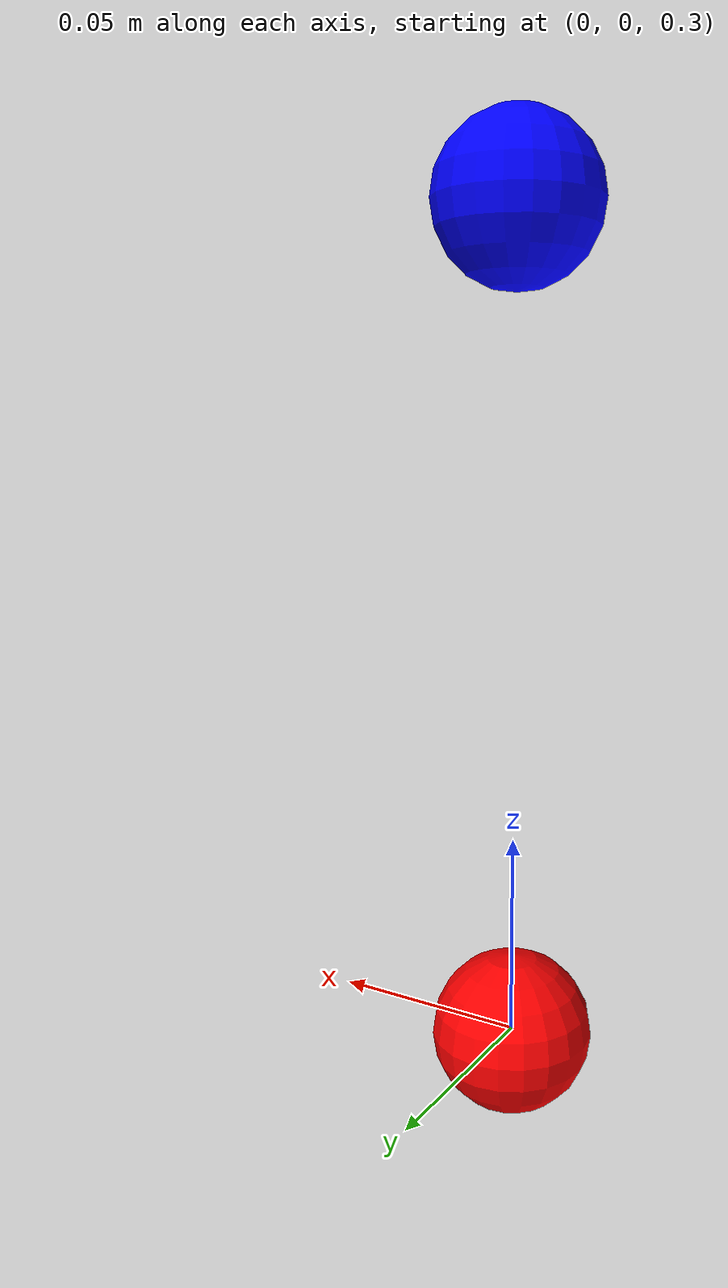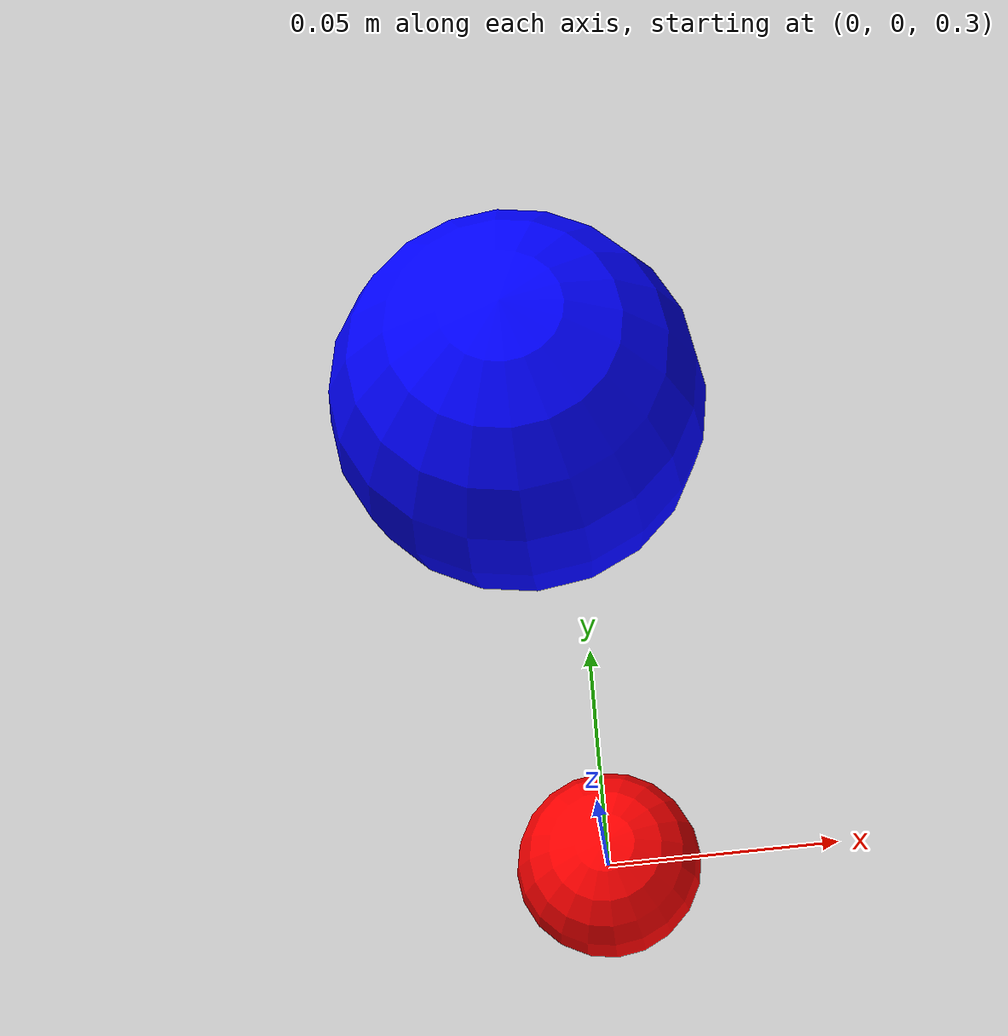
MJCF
<mujoco model="quadruped_with_force">
    <compiler angle="radian"/>

    <worldbody>
        <body name="base" pos="0 0 0">
            <!-- 其他机器人身体部分 -->

            <body name="point_A" pos="0 0 0.3">
                <geom type="sphere" size="0.02" rgba="1 0 0 1"/>
            </body>

            <body name="point_B" pos="0 0 0.5">
                <geom type="sphere" size="0.02" rgba="0 0 1 1"/>
            </body>

            <joint name="AB_joint" type="slide" axis="0 0 1" range="0 0.5"/> <!-- AB之间的滑动关节 -->
            <spring name="AB_spring" joint="AB_joint" stiffness="100" damping="0.1"/> <!-- 定义弹簧 -->
        </body>
    </worldbody>

    <actuator>
        <motor joint="AB_joint" gear="100"/> <!-- 力控制的 actuator -->
    </actuator>
</mujoco>
